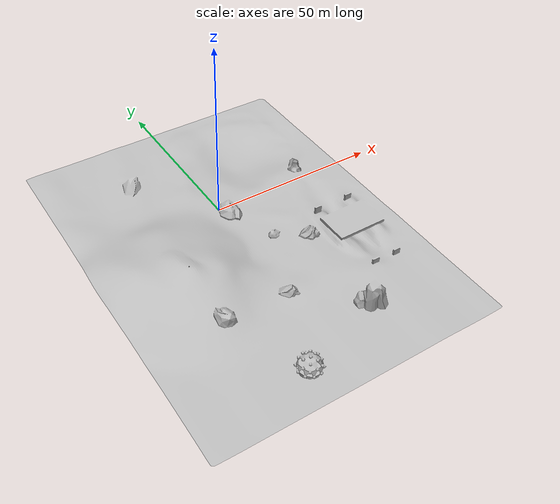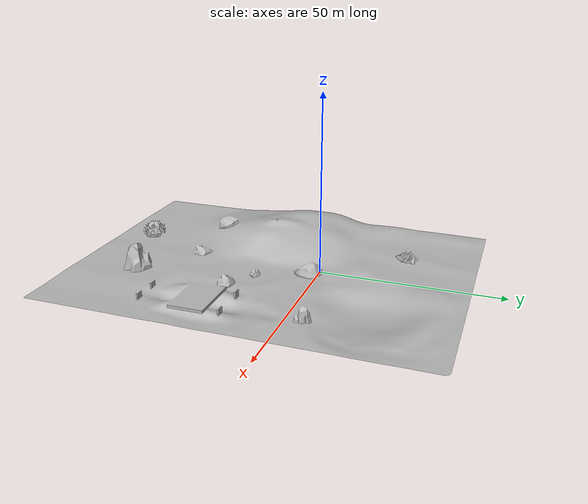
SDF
<?xml version="1.0"?>
<sdf version="1.8">
  <world name="leo_earendil_env">

    <!-- ── Scene ───────────────────────────────────────────────────── -->
    <scene>
      <ambient>0.35 0.35 0.35 1.0</ambient>
      <background>0.7 0.75 0.8 1.0</background>
      <shadows>true</shadows>
    </scene>

    <!-- ── Physics ─────────────────────────────────────────────────── -->
    <physics name="1ms" type="ignored">
      <max_step_size>0.001</max_step_size>
      <real_time_factor>1.0</real_time_factor>
    </physics>

    <!-- ── Plugins ──────────────────────────────────────────────────── -->
    <plugin filename="ignition-gazebo-physics-system"
            name="ignition::gazebo::systems::Physics"/>
    <plugin filename="ignition-gazebo-sensors-system"
            name="ignition::gazebo::systems::Sensors">
      <render_engine>ogre2</render_engine>
    </plugin>
    <plugin filename="ignition-gazebo-scene-broadcaster-system"
            name="ignition::gazebo::systems::SceneBroadcaster"/>
    <plugin filename="ignition-gazebo-user-commands-system"
            name="ignition::gazebo::systems::UserCommands"/>
    <plugin filename="gz-sim-imu-system"
            name="gz::sim::systems::Imu"/>
    <plugin filename="ignition-gazebo-navsat-system"
            name="ignition::gazebo::systems::NavSat"/>

    <!-- ── GPS datum: Ankara ─────────────────────────────────────────── -->
    <spherical_coordinates>
      <surface_model>EARTH_WGS84</surface_model>
      <world_frame_orientation>ENU</world_frame_orientation>
      <latitude_deg>39.925018</latitude_deg>
      <longitude_deg>32.836956</longitude_deg>
      <elevation>890</elevation>
      <heading_deg>0</heading_deg>
    </spherical_coordinates>

    <!-- ── Lighting ─────────────────────────────────────────────────── -->
    <light name="sun" type="directional">
      <cast_shadows>true</cast_shadows>
      <pose>0 0 10 0 0 0</pose>
      <diffuse>1.0 1.0 1.0 1</diffuse>
      <specular>0.3 0.3 0.3 1</specular>
      <attenuation>
        <range>1000</range>
        <constant>0.9</constant>
        <linear>0.01</linear>
        <quadratic>0.001</quadratic>
      </attenuation>
      <direction>-0.7 0.1 -0.7</direction>
    </light>

    <!-- ── Environment Mesh ─────────────────────────────────────────── -->
    <model name="environment">
      <pose>0 0 0 0 0 0</pose>
      <static>true</static>
      <link name="body">
        <visual name="visual">
          <geometry>
            <mesh>
              <uri>meshes/earendil_environment/environment.obj</uri>
            </mesh>
          </geometry>
        </visual>
        <collision name="collision">
          <geometry>
            <mesh>
              <uri>meshes/earendil_environment/environment.obj</uri>
            </mesh>
          </geometry>
        </collision>
      </link>
    </model>

  </world>
</sdf>
